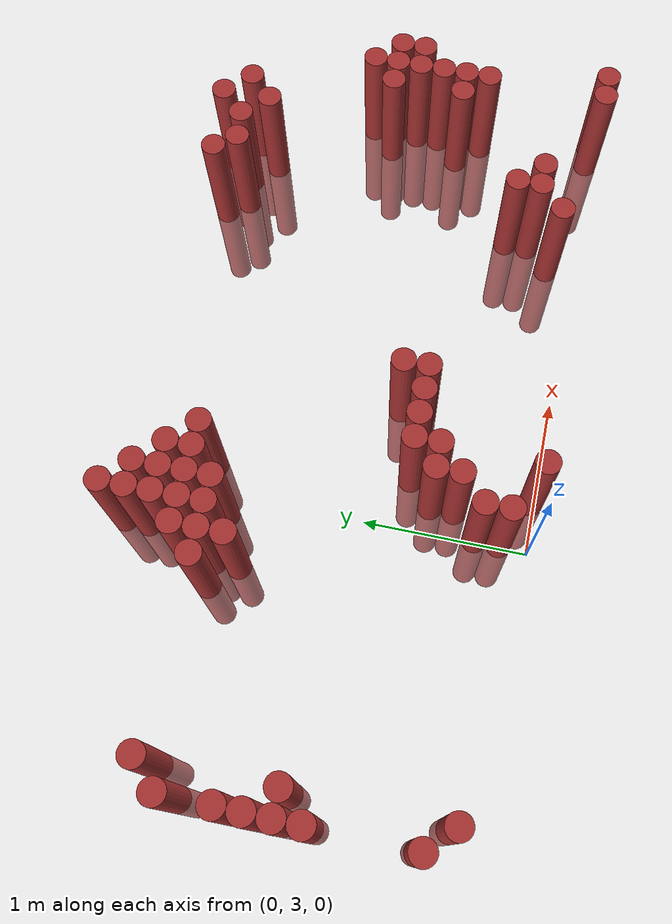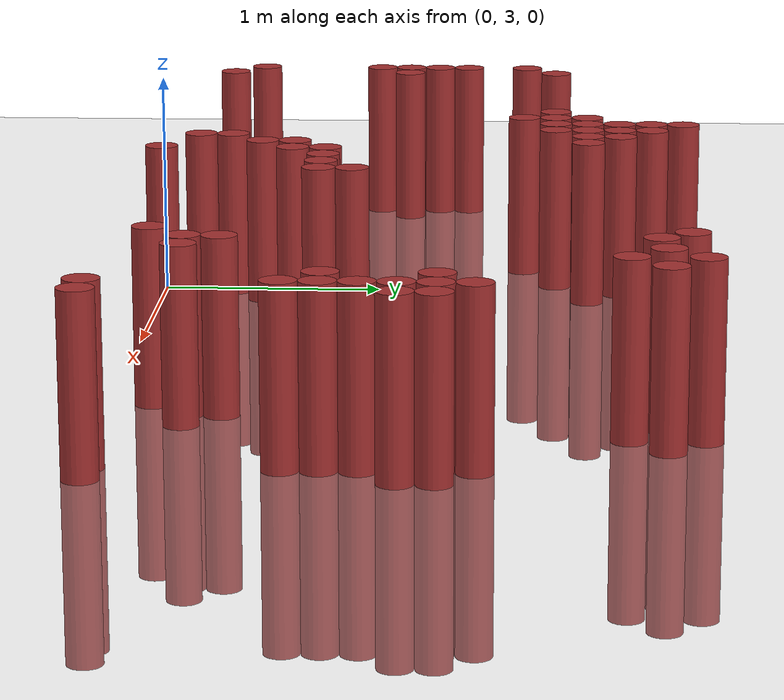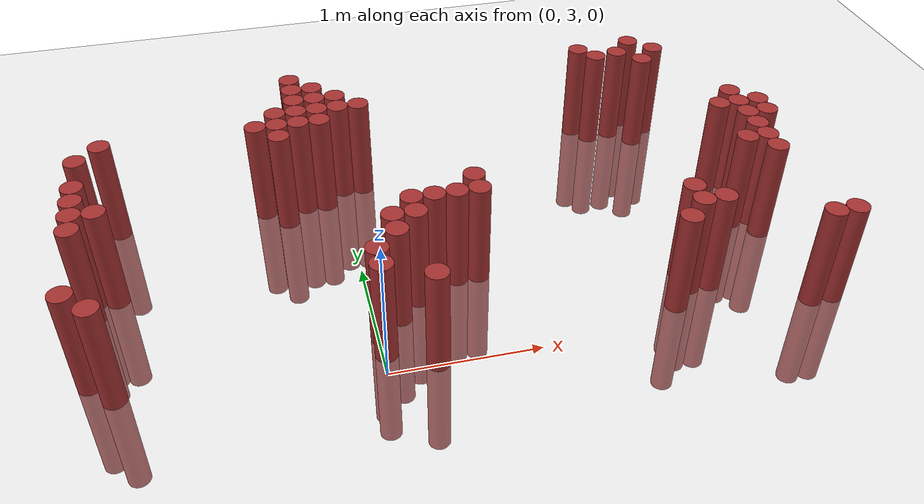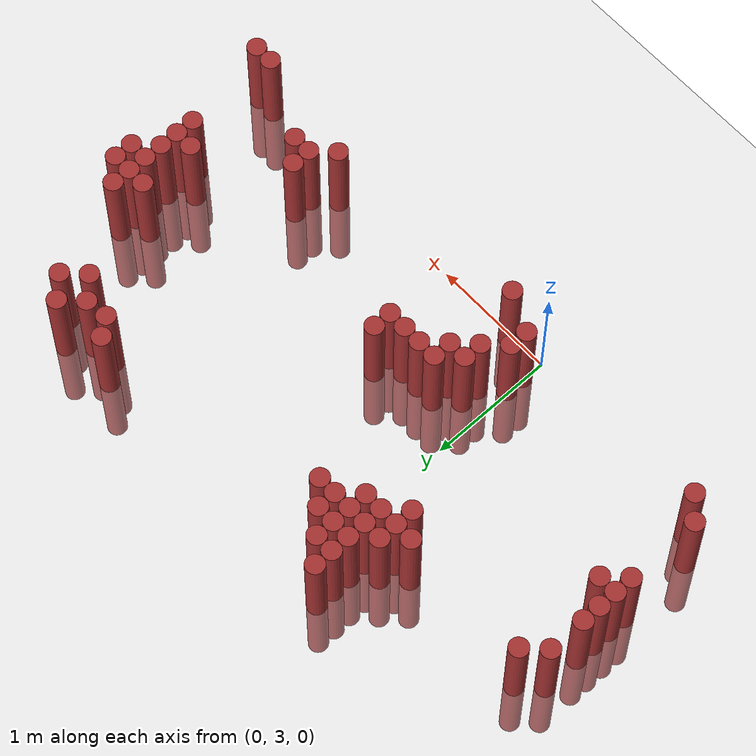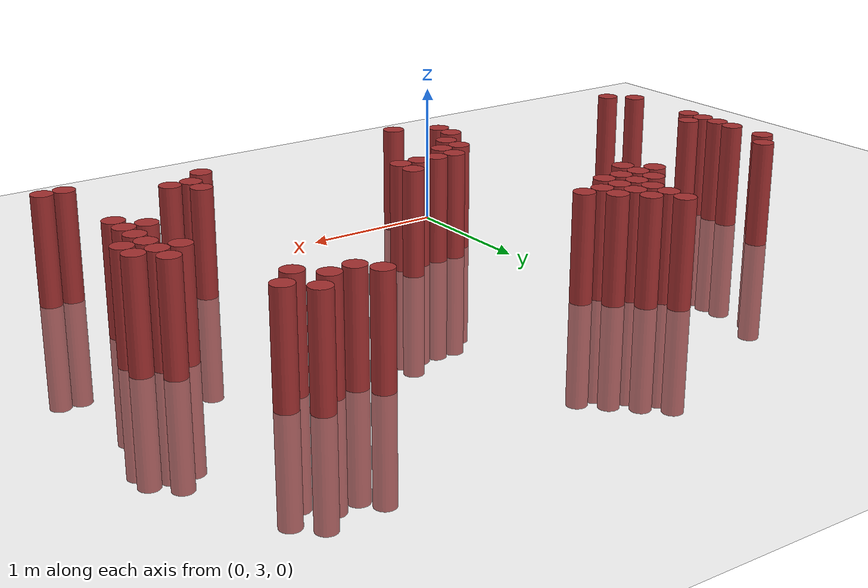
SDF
<sdf version="1.7">
 <world name="default">
  <model name="ground_plane">
   <static>1</static>
   <link name="link">
    <collision name="collision">
     <geometry><plane><normal>0 0 1</normal><size>100 100</size></plane></geometry>
     <surface><friction><ode><mu>100</mu><mu2>50</mu2></ode></friction></surface>
    </collision>
    <visual name="visual">
     <cast_shadows>0</cast_shadows>
     <geometry><plane><normal>0 0 1</normal><size>100 100</size></plane></geometry>
     <material>
      <script><uri>file://media/materials/scripts/gazebo.material</uri><name>Gazebo/Grey</name></script>
     </material>
    </visual>
   </link>
  </model>
  <model name="unit_cylinder_317">
   <static>1</static>
   <pose>-1.775 3.325 0 0 -0 0</pose>
   <link name="link">
    <inertial>
     <mass>1</mass>
     <inertia><ixx>0.145833</ixx><ixy>0</ixy><ixz>0</ixz><iyy>0.145833</iyy><iyz>0</iyz><izz>0.125</izz></inertia>
    </inertial>
    <collision name="collision">
     <geometry><cylinder><radius>0.075</radius><length>1.5</length></cylinder></geometry>
    </collision>
    <visual name="visual">
     <geometry><cylinder><radius>0.075</radius><length>1.5</length></cylinder></geometry>
     <material><ambient>0.648 0.192 0.192 1</ambient><diffuse>0.648 0.192 0.192 1</diffuse></material>
     <material>
      <script><name>Gazebo/Grey</name><uri>file://media/materials/scripts/gazebo.material</uri></script>
     </material>
    </visual>
   </link>
  </model>
  <model name="unit_cylinder_318">
   <static>1</static>
   <pose>-1.775 3.925 0 0 -0 0</pose>
   <link name="link">
    <inertial>
     <mass>1</mass>
     <inertia><ixx>0.145833</ixx><ixy>0</ixy><ixz>0</ixz><iyy>0.145833</iyy><iyz>0</iyz><izz>0.125</izz></inertia>
    </inertial>
    <collision name="collision">
     <geometry><cylinder><radius>0.075</radius><length>1.5</length></cylinder></geometry>
    </collision>
    <visual name="visual">
     <geometry><cylinder><radius>0.075</radius><length>1.5</length></cylinder></geometry>
     <material><ambient>0.648 0.192 0.192 1</ambient><diffuse>0.648 0.192 0.192 1</diffuse></material>
     <material>
      <script><name>Gazebo/Grey</name><uri>file://media/materials/scripts/gazebo.material</uri></script>
     </material>
    </visual>
   </link>
  </model>
  <model name="unit_cylinder_319">
   <static>1</static>
   <pose>-1.775 4.075 0 0 -0 0</pose>
   <link name="link">
    <inertial>
     <mass>1</mass>
     <inertia><ixx>0.145833</ixx><ixy>0</ixy><ixz>0</ixz><iyy>0.145833</iyy><iyz>0</iyz><izz>0.125</izz></inertia>
    </inertial>
    <collision name="collision">
     <geometry><cylinder><radius>0.075</radius><length>1.5</length></cylinder></geometry>
    </collision>
    <visual name="visual">
     <geometry><cylinder><radius>0.075</radius><length>1.5</length></cylinder></geometry>
     <material><ambient>0.648 0.192 0.192 1</ambient><diffuse>0.648 0.192 0.192 1</diffuse></material>
     <material>
      <script><name>Gazebo/Grey</name><uri>file://media/materials/scripts/gazebo.material</uri></script>
     </material>
    </visual>
   </link>
  </model>
  <model name="unit_cylinder_320">
   <static>1</static>
   <pose>-1.775 4.225 0 0 -0 0</pose>
   <link name="link">
    <inertial>
     <mass>1</mass>
     <inertia><ixx>0.145833</ixx><ixy>0</ixy><ixz>0</ixz><iyy>0.145833</iyy><iyz>0</iyz><izz>0.125</izz></inertia>
    </inertial>
    <collision name="collision">
     <geometry><cylinder><radius>0.075</radius><length>1.5</length></cylinder></geometry>
    </collision>
    <visual name="visual">
     <geometry><cylinder><radius>0.075</radius><length>1.5</length></cylinder></geometry>
     <material><ambient>0.648 0.192 0.192 1</ambient><diffuse>0.648 0.192 0.192 1</diffuse></material>
     <material>
      <script><name>Gazebo/Grey</name><uri>file://media/materials/scripts/gazebo.material</uri></script>
     </material>
    </visual>
   </link>
  </model>
  <model name="unit_cylinder_321">
   <static>1</static>
   <pose>-1.775 4.375 0 0 -0 0</pose>
   <link name="link">
    <inertial>
     <mass>1</mass>
     <inertia><ixx>0.145833</ixx><ixy>0</ixy><ixz>0</ixz><iyy>0.145833</iyy><iyz>0</iyz><izz>0.125</izz></inertia>
    </inertial>
    <collision name="collision">
     <geometry><cylinder><radius>0.075</radius><length>1.5</length></cylinder></geometry>
    </collision>
    <visual name="visual">
     <geometry><cylinder><radius>0.075</radius><length>1.5</length></cylinder></geometry>
     <material><ambient>0.648 0.192 0.192 1</ambient><diffuse>0.648 0.192 0.192 1</diffuse></material>
     <material>
      <script><name>Gazebo/Grey</name><uri>file://media/materials/scripts/gazebo.material</uri></script>
     </material>
    </visual>
   </link>
  </model>
  <model name="unit_cylinder_322">
   <static>1</static>
   <pose>-1.775 4.675 0 0 -0 0</pose>
   <link name="link">
    <inertial>
     <mass>1</mass>
     <inertia><ixx>0.145833</ixx><ixy>0</ixy><ixz>0</ixz><iyy>0.145833</iyy><iyz>0</iyz><izz>0.125</izz></inertia>
    </inertial>
    <collision name="collision">
     <geometry><cylinder><radius>0.075</radius><length>1.5</length></cylinder></geometry>
    </collision>
    <visual name="visual">
     <geometry><cylinder><radius>0.075</radius><length>1.5</length></cylinder></geometry>
     <material><ambient>0.648 0.192 0.192 1</ambient><diffuse>0.648 0.192 0.192 1</diffuse></material>
     <material>
      <script><name>Gazebo/Grey</name><uri>file://media/materials/scripts/gazebo.material</uri></script>
     </material>
    </visual>
   </link>
  </model>
  <model name="unit_cylinder_326">
   <static>1</static>
   <pose>-1.625 3.175 0 0 -0 0</pose>
   <link name="link">
    <inertial>
     <mass>1</mass>
     <inertia><ixx>0.145833</ixx><ixy>0</ixy><ixz>0</ixz><iyy>0.145833</iyy><iyz>0</iyz><izz>0.125</izz></inertia>
    </inertial>
    <collision name="collision">
     <geometry><cylinder><radius>0.075</radius><length>1.5</length></cylinder></geometry>
    </collision>
    <visual name="visual">
     <geometry><cylinder><radius>0.075</radius><length>1.5</length></cylinder></geometry>
     <material><ambient>0.648 0.192 0.192 1</ambient><diffuse>0.648 0.192 0.192 1</diffuse></material>
     <material>
      <script><name>Gazebo/Grey</name><uri>file://media/materials/scripts/gazebo.material</uri></script>
     </material>
    </visual>
   </link>
  </model>
  <model name="unit_cylinder_327">
   <static>1</static>
   <pose>-1.625 4.075 0 0 -0 0</pose>
   <link name="link">
    <inertial>
     <mass>1</mass>
     <inertia><ixx>0.145833</ixx><ixy>0</ixy><ixz>0</ixz><iyy>0.145833</iyy><iyz>0</iyz><izz>0.125</izz></inertia>
    </inertial>
    <collision name="collision">
     <geometry><cylinder><radius>0.075</radius><length>1.5</length></cylinder></geometry>
    </collision>
    <visual name="visual">
     <geometry><cylinder><radius>0.075</radius><length>1.5</length></cylinder></geometry>
     <material><ambient>0.648 0.192 0.192 1</ambient><diffuse>0.648 0.192 0.192 1</diffuse></material>
     <material>
      <script><name>Gazebo/Grey</name><uri>file://media/materials/scripts/gazebo.material</uri></script>
     </material>
    </visual>
   </link>
  </model>
  <model name="unit_cylinder_328">
   <static>1</static>
   <pose>-1.625 4.825 0 0 -0 0</pose>
   <link name="link">
    <inertial>
     <mass>1</mass>
     <inertia><ixx>0.145833</ixx><ixy>0</ixy><ixz>0</ixz><iyy>0.145833</iyy><iyz>0</iyz><izz>0.125</izz></inertia>
    </inertial>
    <collision name="collision">
     <geometry><cylinder><radius>0.075</radius><length>1.5</length></cylinder></geometry>
    </collision>
    <visual name="visual">
     <geometry><cylinder><radius>0.075</radius><length>1.5</length></cylinder></geometry>
     <material><ambient>0.648 0.192 0.192 1</ambient><diffuse>0.648 0.192 0.192 1</diffuse></material>
     <material>
      <script><name>Gazebo/Grey</name><uri>file://media/materials/scripts/gazebo.material</uri></script>
     </material>
    </visual>
   </link>
  </model>
  <model name="unit_cylinder_347">
   <static>1</static>
   <pose>-0.575 4.825 0 0 -0 0</pose>
   <link name="link">
    <inertial>
     <mass>1</mass>
     <inertia><ixx>0.145833</ixx><ixy>0</ixy><ixz>0</ixz><iyy>0.145833</iyy><iyz>0</iyz><izz>0.125</izz></inertia>
    </inertial>
    <collision name="collision">
     <geometry><cylinder><radius>0.075</radius><length>1.5</length></cylinder></geometry>
    </collision>
    <visual name="visual">
     <geometry><cylinder><radius>0.075</radius><length>1.5</length></cylinder></geometry>
     <material><ambient>0.648 0.192 0.192 1</ambient><diffuse>0.648 0.192 0.192 1</diffuse></material>
     <material>
      <script><name>Gazebo/Grey</name><uri>file://media/materials/scripts/gazebo.material</uri></script>
     </material>
    </visual>
   </link>
  </model>
  <model name="unit_cylinder_348">
   <static>1</static>
   <pose>-0.425 4.675 0 0 -0 0</pose>
   <link name="link">
    <inertial>
     <mass>1</mass>
     <inertia><ixx>0.145833</ixx><ixy>0</ixy><ixz>0</ixz><iyy>0.145833</iyy><iyz>0</iyz><izz>0.125</izz></inertia>
    </inertial>
    <collision name="collision">
     <geometry><cylinder><radius>0.075</radius><length>1.5</length></cylinder></geometry>
    </collision>
    <visual name="visual">
     <geometry><cylinder><radius>0.075</radius><length>1.5</length></cylinder></geometry>
     <material><ambient>0.648 0.192 0.192 1</ambient><diffuse>0.648 0.192 0.192 1</diffuse></material>
     <material>
      <script><name>Gazebo/Grey</name><uri>file://media/materials/scripts/gazebo.material</uri></script>
     </material>
    </visual>
   </link>
  </model>
  <model name="unit_cylinder_349">
   <static>1</static>
   <pose>-0.425 4.825 0 0 -0 0</pose>
   <link name="link">
    <inertial>
     <mass>1</mass>
     <inertia><ixx>0.145833</ixx><ixy>0</ixy><ixz>0</ixz><iyy>0.145833</iyy><iyz>0</iyz><izz>0.125</izz></inertia>
    </inertial>
    <collision name="collision">
     <geometry><cylinder><radius>0.075</radius><length>1.5</length></cylinder></geometry>
    </collision>
    <visual name="visual">
     <geometry><cylinder><radius>0.075</radius><length>1.5</length></cylinder></geometry>
     <material><ambient>0.648 0.192 0.192 1</ambient><diffuse>0.648 0.192 0.192 1</diffuse></material>
     <material>
      <script><name>Gazebo/Grey</name><uri>file://media/materials/scripts/gazebo.material</uri></script>
     </material>
    </visual>
   </link>
  </model>
  <model name="unit_cylinder_350">
   <static>1</static>
   <pose>-0.425 4.975 0 0 -0 0</pose>
   <link name="link">
    <inertial>
     <mass>1</mass>
     <inertia><ixx>0.145833</ixx><ixy>0</ixy><ixz>0</ixz><iyy>0.145833</iyy><iyz>0</iyz><izz>0.125</izz></inertia>
    </inertial>
    <collision name="collision">
     <geometry><cylinder><radius>0.075</radius><length>1.5</length></cylinder></geometry>
    </collision>
    <visual name="visual">
     <geometry><cylinder><radius>0.075</radius><length>1.5</length></cylinder></geometry>
     <material><ambient>0.648 0.192 0.192 1</ambient><diffuse>0.648 0.192 0.192 1</diffuse></material>
     <material>
      <script><name>Gazebo/Grey</name><uri>file://media/materials/scripts/gazebo.material</uri></script>
     </material>
    </visual>
   </link>
  </model>
  <model name="unit_cylinder_351">
   <static>1</static>
   <pose>-0.275 4.825 0 0 -0 0</pose>
   <link name="link">
    <inertial>
     <mass>1</mass>
     <inertia><ixx>0.145833</ixx><ixy>0</ixy><ixz>0</ixz><iyy>0.145833</iyy><iyz>0</iyz><izz>0.125</izz></inertia>
    </inertial>
    <collision name="collision">
     <geometry><cylinder><radius>0.075</radius><length>1.5</length></cylinder></geometry>
    </collision>
    <visual name="visual">
     <geometry><cylinder><radius>0.075</radius><length>1.5</length></cylinder></geometry>
     <material><ambient>0.648 0.192 0.192 1</ambient><diffuse>0.648 0.192 0.192 1</diffuse></material>
     <material>
      <script><name>Gazebo/Grey</name><uri>file://media/materials/scripts/gazebo.material</uri></script>
     </material>
    </visual>
   </link>
  </model>
  <model name="unit_cylinder_352">
   <static>1</static>
   <pose>-0.275 4.975 0 0 -0 0</pose>
   <link name="link">
    <inertial>
     <mass>1</mass>
     <inertia><ixx>0.145833</ixx><ixy>0</ixy><ixz>0</ixz><iyy>0.145833</iyy><iyz>0</iyz><izz>0.125</izz></inertia>
    </inertial>
    <collision name="collision">
     <geometry><cylinder><radius>0.075</radius><length>1.5</length></cylinder></geometry>
    </collision>
    <visual name="visual">
     <geometry><cylinder><radius>0.075</radius><length>1.5</length></cylinder></geometry>
     <material><ambient>0.648 0.192 0.192 1</ambient><diffuse>0.648 0.192 0.192 1</diffuse></material>
     <material>
      <script><name>Gazebo/Grey</name><uri>file://media/materials/scripts/gazebo.material</uri></script>
     </material>
    </visual>
   </link>
  </model>
  <model name="unit_cylinder_353">
   <static>1</static>
   <pose>-0.275 5.125 0 0 -0 0</pose>
   <link name="link">
    <inertial>
     <mass>1</mass>
     <inertia><ixx>0.145833</ixx><ixy>0</ixy><ixz>0</ixz><iyy>0.145833</iyy><iyz>0</iyz><izz>0.125</izz></inertia>
    </inertial>
    <collision name="collision">
     <geometry><cylinder><radius>0.075</radius><length>1.5</length></cylinder></geometry>
    </collision>
    <visual name="visual">
     <geometry><cylinder><radius>0.075</radius><length>1.5</length></cylinder></geometry>
     <material><ambient>0.648 0.192 0.192 1</ambient><diffuse>0.648 0.192 0.192 1</diffuse></material>
     <material>
      <script><name>Gazebo/Grey</name><uri>file://media/materials/scripts/gazebo.material</uri></script>
     </material>
    </visual>
   </link>
  </model>
  <model name="unit_cylinder_354">
   <static>1</static>
   <pose>-0.275 5.275 0 0 -0 0</pose>
   <link name="link">
    <inertial>
     <mass>1</mass>
     <inertia><ixx>0.145833</ixx><ixy>0</ixy><ixz>0</ixz><iyy>0.145833</iyy><iyz>0</iyz><izz>0.125</izz></inertia>
    </inertial>
    <collision name="collision">
     <geometry><cylinder><radius>0.075</radius><length>1.5</length></cylinder></geometry>
    </collision>
    <visual name="visual">
     <geometry><cylinder><radius>0.075</radius><length>1.5</length></cylinder></geometry>
     <material><ambient>0.648 0.192 0.192 1</ambient><diffuse>0.648 0.192 0.192 1</diffuse></material>
     <material>
      <script><name>Gazebo/Grey</name><uri>file://media/materials/scripts/gazebo.material</uri></script>
     </material>
    </visual>
   </link>
  </model>
  <model name="unit_cylinder_355">
   <static>1</static>
   <pose>-0.275 5.425 0 0 -0 0</pose>
   <link name="link">
    <inertial>
     <mass>1</mass>
     <inertia><ixx>0.145833</ixx><ixy>0</ixy><ixz>0</ixz><iyy>0.145833</iyy><iyz>0</iyz><izz>0.125</izz></inertia>
    </inertial>
    <collision name="collision">
     <geometry><cylinder><radius>0.075</radius><length>1.5</length></cylinder></geometry>
    </collision>
    <visual name="visual">
     <geometry><cylinder><radius>0.075</radius><length>1.5</length></cylinder></geometry>
     <material><ambient>0.648 0.192 0.192 1</ambient><diffuse>0.648 0.192 0.192 1</diffuse></material>
     <material>
      <script><name>Gazebo/Grey</name><uri>file://media/materials/scripts/gazebo.material</uri></script>
     </material>
    </visual>
   </link>
  </model>
  <model name="unit_cylinder_357">
   <static>1</static>
   <pose>-0.125 4.825 0 0 -0 0</pose>
   <link name="link">
    <inertial>
     <mass>1</mass>
     <inertia><ixx>0.145833</ixx><ixy>0</ixy><ixz>0</ixz><iyy>0.145833</iyy><iyz>0</iyz><izz>0.125</izz></inertia>
    </inertial>
    <collision name="collision">
     <geometry><cylinder><radius>0.075</radius><length>1.5</length></cylinder></geometry>
    </collision>
    <visual name="visual">
     <geometry><cylinder><radius>0.075</radius><length>1.5</length></cylinder></geometry>
     <material><ambient>0.648 0.192 0.192 1</ambient><diffuse>0.648 0.192 0.192 1</diffuse></material>
     <material>
      <script><name>Gazebo/Grey</name><uri>file://media/materials/scripts/gazebo.material</uri></script>
     </material>
    </visual>
   </link>
  </model>
  <model name="unit_cylinder_358">
   <static>1</static>
   <pose>-0.125 4.975 0 0 -0 0</pose>
   <link name="link">
    <inertial>
     <mass>1</mass>
     <inertia><ixx>0.145833</ixx><ixy>0</ixy><ixz>0</ixz><iyy>0.145833</iyy><iyz>0</iyz><izz>0.125</izz></inertia>
    </inertial>
    <collision name="collision">
     <geometry><cylinder><radius>0.075</radius><length>1.5</length></cylinder></geometry>
    </collision>
    <visual name="visual">
     <geometry><cylinder><radius>0.075</radius><length>1.5</length></cylinder></geometry>
     <material><ambient>0.648 0.192 0.192 1</ambient><diffuse>0.648 0.192 0.192 1</diffuse></material>
     <material>
      <script><name>Gazebo/Grey</name><uri>file://media/materials/scripts/gazebo.material</uri></script>
     </material>
    </visual>
   </link>
  </model>
  <model name="unit_cylinder_359">
   <static>1</static>
   <pose>-0.125 5.125 0 0 -0 0</pose>
   <link name="link">
    <inertial>
     <mass>1</mass>
     <inertia><ixx>0.145833</ixx><ixy>0</ixy><ixz>0</ixz><iyy>0.145833</iyy><iyz>0</iyz><izz>0.125</izz></inertia>
    </inertial>
    <collision name="collision">
     <geometry><cylinder><radius>0.075</radius><length>1.5</length></cylinder></geometry>
    </collision>
    <visual name="visual">
     <geometry><cylinder><radius>0.075</radius><length>1.5</length></cylinder></geometry>
     <material><ambient>0.648 0.192 0.192 1</ambient><diffuse>0.648 0.192 0.192 1</diffuse></material>
     <material>
      <script><name>Gazebo/Grey</name><uri>file://media/materials/scripts/gazebo.material</uri></script>
     </material>
    </visual>
   </link>
  </model>
  <model name="unit_cylinder_360">
   <static>1</static>
   <pose>-0.125 5.275 0 0 -0 0</pose>
   <link name="link">
    <inertial>
     <mass>1</mass>
     <inertia><ixx>0.145833</ixx><ixy>0</ixy><ixz>0</ixz><iyy>0.145833</iyy><iyz>0</iyz><izz>0.125</izz></inertia>
    </inertial>
    <collision name="collision">
     <geometry><cylinder><radius>0.075</radius><length>1.5</length></cylinder></geometry>
    </collision>
    <visual name="visual">
     <geometry><cylinder><radius>0.075</radius><length>1.5</length></cylinder></geometry>
     <material><ambient>0.648 0.192 0.192 1</ambient><diffuse>0.648 0.192 0.192 1</diffuse></material>
     <material>
      <script><name>Gazebo/Grey</name><uri>file://media/materials/scripts/gazebo.material</uri></script>
     </material>
    </visual>
   </link>
  </model>
  <model name="unit_cylinder_363">
   <static>1</static>
   <pose>0.025 3.175 0 0 -0 0</pose>
   <link name="link">
    <inertial>
     <mass>1</mass>
     <inertia><ixx>0.145833</ixx><ixy>0</ixy><ixz>0</ixz><iyy>0.145833</iyy><iyz>0</iyz><izz>0.125</izz></inertia>
    </inertial>
    <collision name="collision">
     <geometry><cylinder><radius>0.075</radius><length>1.5</length></cylinder></geometry>
    </collision>
    <visual name="visual">
     <geometry><cylinder><radius>0.075</radius><length>1.5</length></cylinder></geometry>
     <material><ambient>0.648 0.192 0.192 1</ambient><diffuse>0.648 0.192 0.192 1</diffuse></material>
     <material>
      <script><name>Gazebo/Grey</name><uri>file://media/materials/scripts/gazebo.material</uri></script>
     </material>
    </visual>
   </link>
  </model>
  <model name="unit_cylinder_364">
   <static>1</static>
   <pose>0.025 3.325 0 0 -0 0</pose>
   <link name="link">
    <inertial>
     <mass>1</mass>
     <inertia><ixx>0.145833</ixx><ixy>0</ixy><ixz>0</ixz><iyy>0.145833</iyy><iyz>0</iyz><izz>0.125</izz></inertia>
    </inertial>
    <collision name="collision">
     <geometry><cylinder><radius>0.075</radius><length>1.5</length></cylinder></geometry>
    </collision>
    <visual name="visual">
     <geometry><cylinder><radius>0.075</radius><length>1.5</length></cylinder></geometry>
     <material><ambient>0.648 0.192 0.192 1</ambient><diffuse>0.648 0.192 0.192 1</diffuse></material>
     <material>
      <script><name>Gazebo/Grey</name><uri>file://media/materials/scripts/gazebo.material</uri></script>
     </material>
    </visual>
   </link>
  </model>
  <model name="unit_cylinder_365">
   <static>1</static>
   <pose>0.025 4.975 0 0 -0 0</pose>
   <link name="link">
    <inertial>
     <mass>1</mass>
     <inertia><ixx>0.145833</ixx><ixy>0</ixy><ixz>0</ixz><iyy>0.145833</iyy><iyz>0</iyz><izz>0.125</izz></inertia>
    </inertial>
    <collision name="collision">
     <geometry><cylinder><radius>0.075</radius><length>1.5</length></cylinder></geometry>
    </collision>
    <visual name="visual">
     <geometry><cylinder><radius>0.075</radius><length>1.5</length></cylinder></geometry>
     <material><ambient>0.648 0.192 0.192 1</ambient><diffuse>0.648 0.192 0.192 1</diffuse></material>
     <material>
      <script><name>Gazebo/Grey</name><uri>file://media/materials/scripts/gazebo.material</uri></script>
     </material>
    </visual>
   </link>
  </model>
  <model name="unit_cylinder_366">
   <static>1</static>
   <pose>0.025 5.125 0 0 -0 0</pose>
   <link name="link">
    <inertial>
     <mass>1</mass>
     <inertia><ixx>0.145833</ixx><ixy>0</ixy><ixz>0</ixz><iyy>0.145833</iyy><iyz>0</iyz><izz>0.125</izz></inertia>
    </inertial>
    <collision name="collision">
     <geometry><cylinder><radius>0.075</radius><length>1.5</length></cylinder></geometry>
    </collision>
    <visual name="visual">
     <geometry><cylinder><radius>0.075</radius><length>1.5</length></cylinder></geometry>
     <material><ambient>0.648 0.192 0.192 1</ambient><diffuse>0.648 0.192 0.192 1</diffuse></material>
     <material>
      <script><name>Gazebo/Grey</name><uri>file://media/materials/scripts/gazebo.material</uri></script>
     </material>
    </visual>
   </link>
  </model>
  <model name="unit_cylinder_370">
   <static>1</static>
   <pose>0.175 3.475 0 0 -0 0</pose>
   <link name="link">
    <inertial>
     <mass>1</mass>
     <inertia><ixx>0.145833</ixx><ixy>0</ixy><ixz>0</ixz><iyy>0.145833</iyy><iyz>0</iyz><izz>0.125</izz></inertia>
    </inertial>
    <collision name="collision">
     <geometry><cylinder><radius>0.075</radius><length>1.5</length></cylinder></geometry>
    </collision>
    <visual name="visual">
     <geometry><cylinder><radius>0.075</radius><length>1.5</length></cylinder></geometry>
     <material><ambient>0.648 0.192 0.192 1</ambient><diffuse>0.648 0.192 0.192 1</diffuse></material>
     <material>
      <script><name>Gazebo/Grey</name><uri>file://media/materials/scripts/gazebo.material</uri></script>
     </material>
    </visual>
   </link>
  </model>
  <model name="unit_cylinder_371">
   <static>1</static>
   <pose>0.175 3.625 0 0 -0 0</pose>
   <link name="link">
    <inertial>
     <mass>1</mass>
     <inertia><ixx>0.145833</ixx><ixy>0</ixy><ixz>0</ixz><iyy>0.145833</iyy><iyz>0</iyz><izz>0.125</izz></inertia>
    </inertial>
    <collision name="collision">
     <geometry><cylinder><radius>0.075</radius><length>1.5</length></cylinder></geometry>
    </collision>
    <visual name="visual">
     <geometry><cylinder><radius>0.075</radius><length>1.5</length></cylinder></geometry>
     <material><ambient>0.648 0.192 0.192 1</ambient><diffuse>0.648 0.192 0.192 1</diffuse></material>
     <material>
      <script><name>Gazebo/Grey</name><uri>file://media/materials/scripts/gazebo.material</uri></script>
     </material>
    </visual>
   </link>
  </model>
  <model name="unit_cylinder_372">
   <static>1</static>
   <pose>0.175 4.975 0 0 -0 0</pose>
   <link name="link">
    <inertial>
     <mass>1</mass>
     <inertia><ixx>0.145833</ixx><ixy>0</ixy><ixz>0</ixz><iyy>0.145833</iyy><iyz>0</iyz><izz>0.125</izz></inertia>
    </inertial>
    <collision name="collision">
     <geometry><cylinder><radius>0.075</radius><length>1.5</length></cylinder></geometry>
    </collision>
    <visual name="visual">
     <geometry><cylinder><radius>0.075</radius><length>1.5</length></cylinder></geometry>
     <material><ambient>0.648 0.192 0.192 1</ambient><diffuse>0.648 0.192 0.192 1</diffuse></material>
     <material>
      <script><name>Gazebo/Grey</name><uri>file://media/materials/scripts/gazebo.material</uri></script>
     </material>
    </visual>
   </link>
  </model>
  <model name="unit_cylinder_375">
   <static>1</static>
   <pose>0.325 3.025 0 0 -0 0</pose>
   <link name="link">
    <inertial>
     <mass>1</mass>
     <inertia><ixx>0.145833</ixx><ixy>0</ixy><ixz>0</ixz><iyy>0.145833</iyy><iyz>0</iyz><izz>0.125</izz></inertia>
    </inertial>
    <collision name="collision">
     <geometry><cylinder><radius>0.075</radius><length>1.5</length></cylinder></geometry>
    </collision>
    <visual name="visual">
     <geometry><cylinder><radius>0.075</radius><length>1.5</length></cylinder></geometry>
     <material><ambient>0.648 0.192 0.192 1</ambient><diffuse>0.648 0.192 0.192 1</diffuse></material>
     <material>
      <script><name>Gazebo/Grey</name><uri>file://media/materials/scripts/gazebo.material</uri></script>
     </material>
    </visual>
   </link>
  </model>
  <model name="unit_cylinder_376">
   <static>1</static>
   <pose>0.325 3.625 0 0 -0 0</pose>
   <link name="link">
    <inertial>
     <mass>1</mass>
     <inertia><ixx>0.145833</ixx><ixy>0</ixy><ixz>0</ixz><iyy>0.145833</iyy><iyz>0</iyz><izz>0.125</izz></inertia>
    </inertial>
    <collision name="collision">
     <geometry><cylinder><radius>0.075</radius><length>1.5</length></cylinder></geometry>
    </collision>
    <visual name="visual">
     <geometry><cylinder><radius>0.075</radius><length>1.5</length></cylinder></geometry>
     <material><ambient>0.648 0.192 0.192 1</ambient><diffuse>0.648 0.192 0.192 1</diffuse></material>
     <material>
      <script><name>Gazebo/Grey</name><uri>file://media/materials/scripts/gazebo.material</uri></script>
     </material>
    </visual>
   </link>
  </model>
  <model name="unit_cylinder_377">
   <static>1</static>
   <pose>0.325 3.775 0 0 -0 0</pose>
   <link name="link">
    <inertial>
     <mass>1</mass>
     <inertia><ixx>0.145833</ixx><ixy>0</ixy><ixz>0</ixz><iyy>0.145833</iyy><iyz>0</iyz><izz>0.125</izz></inertia>
    </inertial>
    <collision name="collision">
     <geometry><cylinder><radius>0.075</radius><length>1.5</length></cylinder></geometry>
    </collision>
    <visual name="visual">
     <geometry><cylinder><radius>0.075</radius><length>1.5</length></cylinder></geometry>
     <material><ambient>0.648 0.192 0.192 1</ambient><diffuse>0.648 0.192 0.192 1</diffuse></material>
     <material>
      <script><name>Gazebo/Grey</name><uri>file://media/materials/scripts/gazebo.material</uri></script>
     </material>
    </visual>
   </link>
  </model>
  <model name="unit_cylinder_378">
   <static>1</static>
   <pose>0.475 3.775 0 0 -0 0</pose>
   <link name="link">
    <inertial>
     <mass>1</mass>
     <inertia><ixx>0.145833</ixx><ixy>0</ixy><ixz>0</ixz><iyy>0.145833</iyy><iyz>0</iyz><izz>0.125</izz></inertia>
    </inertial>
    <collision name="collision">
     <geometry><cylinder><radius>0.075</radius><length>1.5</length></cylinder></geometry>
    </collision>
    <visual name="visual">
     <geometry><cylinder><radius>0.075</radius><length>1.5</length></cylinder></geometry>
     <material><ambient>0.648 0.192 0.192 1</ambient><diffuse>0.648 0.192 0.192 1</diffuse></material>
     <material>
      <script><name>Gazebo/Grey</name><uri>file://media/materials/scripts/gazebo.material</uri></script>
     </material>
    </visual>
   </link>
  </model>
  <model name="unit_cylinder_383">
   <static>1</static>
   <pose>0.625 3.775 0 0 -0 0</pose>
   <link name="link">
    <inertial>
     <mass>1</mass>
     <inertia><ixx>0.145833</ixx><ixy>0</ixy><ixz>0</ixz><iyy>0.145833</iyy><iyz>0</iyz><izz>0.125</izz></inertia>
    </inertial>
    <collision name="collision">
     <geometry><cylinder><radius>0.075</radius><length>1.5</length></cylinder></geometry>
    </collision>
    <visual name="visual">
     <geometry><cylinder><radius>0.075</radius><length>1.5</length></cylinder></geometry>
     <material><ambient>0.648 0.192 0.192 1</ambient><diffuse>0.648 0.192 0.192 1</diffuse></material>
     <material>
      <script><name>Gazebo/Grey</name><uri>file://media/materials/scripts/gazebo.material</uri></script>
     </material>
    </visual>
   </link>
  </model>
  <model name="unit_cylinder_387">
   <static>1</static>
   <pose>0.775 3.775 0 0 -0 0</pose>
   <link name="link">
    <inertial>
     <mass>1</mass>
     <inertia><ixx>0.145833</ixx><ixy>0</ixy><ixz>0</ixz><iyy>0.145833</iyy><iyz>0</iyz><izz>0.125</izz></inertia>
    </inertial>
    <collision name="collision">
     <geometry><cylinder><radius>0.075</radius><length>1.5</length></cylinder></geometry>
    </collision>
    <visual name="visual">
     <geometry><cylinder><radius>0.075</radius><length>1.5</length></cylinder></geometry>
     <material><ambient>0.648 0.192 0.192 1</ambient><diffuse>0.648 0.192 0.192 1</diffuse></material>
     <material>
      <script><name>Gazebo/Grey</name><uri>file://media/materials/scripts/gazebo.material</uri></script>
     </material>
    </visual>
   </link>
  </model>
  <model name="unit_cylinder_388">
   <static>1</static>
   <pose>0.775 3.925 0 0 -0 0</pose>
   <link name="link">
    <inertial>
     <mass>1</mass>
     <inertia><ixx>0.145833</ixx><ixy>0</ixy><ixz>0</ixz><iyy>0.145833</iyy><iyz>0</iyz><izz>0.125</izz></inertia>
    </inertial>
    <collision name="collision">
     <geometry><cylinder><radius>0.075</radius><length>1.5</length></cylinder></geometry>
    </collision>
    <visual name="visual">
     <geometry><cylinder><radius>0.075</radius><length>1.5</length></cylinder></geometry>
     <material><ambient>0.648 0.192 0.192 1</ambient><diffuse>0.648 0.192 0.192 1</diffuse></material>
     <material>
      <script><name>Gazebo/Grey</name><uri>file://media/materials/scripts/gazebo.material</uri></script>
     </material>
    </visual>
   </link>
  </model>
  <model name="unit_cylinder_403">
   <static>1</static>
   <pose>1.975 3.175 0 0 -0 0</pose>
   <link name="link">
    <inertial>
     <mass>1</mass>
     <inertia><ixx>0.145833</ixx><ixy>0</ixy><ixz>0</ixz><iyy>0.145833</iyy><iyz>0</iyz><izz>0.125</izz></inertia>
    </inertial>
    <collision name="collision">
     <geometry><cylinder><radius>0.075</radius><length>1.5</length></cylinder></geometry>
    </collision>
    <visual name="visual">
     <geometry><cylinder><radius>0.075</radius><length>1.5</length></cylinder></geometry>
     <material><ambient>0.648 0.192 0.192 1</ambient><diffuse>0.648 0.192 0.192 1</diffuse></material>
     <material>
      <script><name>Gazebo/Grey</name><uri>file://media/materials/scripts/gazebo.material</uri></script>
     </material>
    </visual>
   </link>
  </model>
  <model name="unit_cylinder_405">
   <static>1</static>
   <pose>2.125 3.325 0 0 -0 0</pose>
   <link name="link">
    <inertial>
     <mass>1</mass>
     <inertia><ixx>0.145833</ixx><ixy>0</ixy><ixz>0</ixz><iyy>0.145833</iyy><iyz>0</iyz><izz>0.125</izz></inertia>
    </inertial>
    <collision name="collision">
     <geometry><cylinder><radius>0.075</radius><length>1.5</length></cylinder></geometry>
    </collision>
    <visual name="visual">
     <geometry><cylinder><radius>0.075</radius><length>1.5</length></cylinder></geometry>
     <material><ambient>0.648 0.192 0.192 1</ambient><diffuse>0.648 0.192 0.192 1</diffuse></material>
     <material>
      <script><name>Gazebo/Grey</name><uri>file://media/materials/scripts/gazebo.material</uri></script>
     </material>
    </visual>
   </link>
  </model>
  <model name="unit_cylinder_406">
   <static>1</static>
   <pose>2.125 3.475 0 0 -0 0</pose>
   <link name="link">
    <inertial>
     <mass>1</mass>
     <inertia><ixx>0.145833</ixx><ixy>0</ixy><ixz>0</ixz><iyy>0.145833</iyy><iyz>0</iyz><izz>0.125</izz></inertia>
    </inertial>
    <collision name="collision">
     <geometry><cylinder><radius>0.075</radius><length>1.5</length></cylinder></geometry>
    </collision>
    <visual name="visual">
     <geometry><cylinder><radius>0.075</radius><length>1.5</length></cylinder></geometry>
     <material><ambient>0.648 0.192 0.192 1</ambient><diffuse>0.648 0.192 0.192 1</diffuse></material>
     <material>
      <script><name>Gazebo/Grey</name><uri>file://media/materials/scripts/gazebo.material</uri></script>
     </material>
    </visual>
   </link>
  </model>
  <model name="unit_cylinder_407">
   <static>1</static>
   <pose>2.275 3.325 0 0 -0 0</pose>
   <link name="link">
    <inertial>
     <mass>1</mass>
     <inertia><ixx>0.145833</ixx><ixy>0</ixy><ixz>0</ixz><iyy>0.145833</iyy><iyz>0</iyz><izz>0.125</izz></inertia>
    </inertial>
    <collision name="collision">
     <geometry><cylinder><radius>0.075</radius><length>1.5</length></cylinder></geometry>
    </collision>
    <visual name="visual">
     <geometry><cylinder><radius>0.075</radius><length>1.5</length></cylinder></geometry>
     <material><ambient>0.648 0.192 0.192 1</ambient><diffuse>0.648 0.192 0.192 1</diffuse></material>
     <material>
      <script><name>Gazebo/Grey</name><uri>file://media/materials/scripts/gazebo.material</uri></script>
     </material>
    </visual>
   </link>
  </model>
  <model name="unit_cylinder_408">
   <static>1</static>
   <pose>2.275 5.275 0 0 -0 0</pose>
   <link name="link">
    <inertial>
     <mass>1</mass>
     <inertia><ixx>0.145833</ixx><ixy>0</ixy><ixz>0</ixz><iyy>0.145833</iyy><iyz>0</iyz><izz>0.125</izz></inertia>
    </inertial>
    <collision name="collision">
     <geometry><cylinder><radius>0.075</radius><length>1.5</length></cylinder></geometry>
    </collision>
    <visual name="visual">
     <geometry><cylinder><radius>0.075</radius><length>1.5</length></cylinder></geometry>
     <material><ambient>0.648 0.192 0.192 1</ambient><diffuse>0.648 0.192 0.192 1</diffuse></material>
     <material>
      <script><name>Gazebo/Grey</name><uri>file://media/materials/scripts/gazebo.material</uri></script>
     </material>
    </visual>
   </link>
  </model>
  <model name="unit_cylinder_409">
   <static>1</static>
   <pose>2.425 5.125 0 0 -0 0</pose>
   <link name="link">
    <inertial>
     <mass>1</mass>
     <inertia><ixx>0.145833</ixx><ixy>0</ixy><ixz>0</ixz><iyy>0.145833</iyy><iyz>0</iyz><izz>0.125</izz></inertia>
    </inertial>
    <collision name="collision">
     <geometry><cylinder><radius>0.075</radius><length>1.5</length></cylinder></geometry>
    </collision>
    <visual name="visual">
     <geometry><cylinder><radius>0.075</radius><length>1.5</length></cylinder></geometry>
     <material><ambient>0.648 0.192 0.192 1</ambient><diffuse>0.648 0.192 0.192 1</diffuse></material>
     <material>
      <script><name>Gazebo/Grey</name><uri>file://media/materials/scripts/gazebo.material</uri></script>
     </material>
    </visual>
   </link>
  </model>
  <model name="unit_cylinder_410">
   <static>1</static>
   <pose>2.425 5.425 0 0 -0 0</pose>
   <link name="link">
    <inertial>
     <mass>1</mass>
     <inertia><ixx>0.145833</ixx><ixy>0</ixy><ixz>0</ixz><iyy>0.145833</iyy><iyz>0</iyz><izz>0.125</izz></inertia>
    </inertial>
    <collision name="collision">
     <geometry><cylinder><radius>0.075</radius><length>1.5</length></cylinder></geometry>
    </collision>
    <visual name="visual">
     <geometry><cylinder><radius>0.075</radius><length>1.5</length></cylinder></geometry>
     <material><ambient>0.648 0.192 0.192 1</ambient><diffuse>0.648 0.192 0.192 1</diffuse></material>
     <material>
      <script><name>Gazebo/Grey</name><uri>file://media/materials/scripts/gazebo.material</uri></script>
     </material>
    </visual>
   </link>
  </model>
  <model name="unit_cylinder_411">
   <static>1</static>
   <pose>2.575 5.275 0 0 -0 0</pose>
   <link name="link">
    <inertial>
     <mass>1</mass>
     <inertia><ixx>0.145833</ixx><ixy>0</ixy><ixz>0</ixz><iyy>0.145833</iyy><iyz>0</iyz><izz>0.125</izz></inertia>
    </inertial>
    <collision name="collision">
     <geometry><cylinder><radius>0.075</radius><length>1.5</length></cylinder></geometry>
    </collision>
    <visual name="visual">
     <geometry><cylinder><radius>0.075</radius><length>1.5</length></cylinder></geometry>
     <material><ambient>0.648 0.192 0.192 1</ambient><diffuse>0.648 0.192 0.192 1</diffuse></material>
     <material>
      <script><name>Gazebo/Grey</name><uri>file://media/materials/scripts/gazebo.material</uri></script>
     </material>
    </visual>
   </link>
  </model>
  <model name="unit_cylinder_413">
   <static>1</static>
   <pose>2.725 3.925 0 0 -0 0</pose>
   <link name="link">
    <inertial>
     <mass>1</mass>
     <inertia><ixx>0.145833</ixx><ixy>0</ixy><ixz>0</ixz><iyy>0.145833</iyy><iyz>0</iyz><izz>0.125</izz></inertia>
    </inertial>
    <collision name="collision">
     <geometry><cylinder><radius>0.075</radius><length>1.5</length></cylinder></geometry>
    </collision>
    <visual name="visual">
     <geometry><cylinder><radius>0.075</radius><length>1.5</length></cylinder></geometry>
     <material><ambient>0.648 0.192 0.192 1</ambient><diffuse>0.648 0.192 0.192 1</diffuse></material>
     <material>
      <script><name>Gazebo/Grey</name><uri>file://media/materials/scripts/gazebo.material</uri></script>
     </material>
    </visual>
   </link>
  </model>
  <model name="unit_cylinder_414">
   <static>1</static>
   <pose>2.725 4.375 0 0 -0 0</pose>
   <link name="link">
    <inertial>
     <mass>1</mass>
     <inertia><ixx>0.145833</ixx><ixy>0</ixy><ixz>0</ixz><iyy>0.145833</iyy><iyz>0</iyz><izz>0.125</izz></inertia>
    </inertial>
    <collision name="collision">
     <geometry><cylinder><radius>0.075</radius><length>1.5</length></cylinder></geometry>
    </collision>
    <visual name="visual">
     <geometry><cylinder><radius>0.075</radius><length>1.5</length></cylinder></geometry>
     <material><ambient>0.648 0.192 0.192 1</ambient><diffuse>0.648 0.192 0.192 1</diffuse></material>
     <material>
      <script><name>Gazebo/Grey</name><uri>file://media/materials/scripts/gazebo.material</uri></script>
     </material>
    </visual>
   </link>
  </model>
  <model name="unit_cylinder_416">
   <static>1</static>
   <pose>2.875 3.025 0 0 -0 0</pose>
   <link name="link">
    <inertial>
     <mass>1</mass>
     <inertia><ixx>0.145833</ixx><ixy>0</ixy><ixz>0</ixz><iyy>0.145833</iyy><iyz>0</iyz><izz>0.125</izz></inertia>
    </inertial>
    <collision name="collision">
     <geometry><cylinder><radius>0.075</radius><length>1.5</length></cylinder></geometry>
    </collision>
    <visual name="visual">
     <geometry><cylinder><radius>0.075</radius><length>1.5</length></cylinder></geometry>
     <material><ambient>0.648 0.192 0.192 1</ambient><diffuse>0.648 0.192 0.192 1</diffuse></material>
     <material>
      <script><name>Gazebo/Grey</name><uri>file://media/materials/scripts/gazebo.material</uri></script>
     </material>
    </visual>
   </link>
  </model>
  <model name="unit_cylinder_417">
   <static>1</static>
   <pose>2.875 3.775 0 0 -0 0</pose>
   <link name="link">
    <inertial>
     <mass>1</mass>
     <inertia><ixx>0.145833</ixx><ixy>0</ixy><ixz>0</ixz><iyy>0.145833</iyy><iyz>0</iyz><izz>0.125</izz></inertia>
    </inertial>
    <collision name="collision">
     <geometry><cylinder><radius>0.075</radius><length>1.5</length></cylinder></geometry>
    </collision>
    <visual name="visual">
     <geometry><cylinder><radius>0.075</radius><length>1.5</length></cylinder></geometry>
     <material><ambient>0.648 0.192 0.192 1</ambient><diffuse>0.648 0.192 0.192 1</diffuse></material>
     <material>
      <script><name>Gazebo/Grey</name><uri>file://media/materials/scripts/gazebo.material</uri></script>
     </material>
    </visual>
   </link>
  </model>
  <model name="unit_cylinder_418">
   <static>1</static>
   <pose>2.875 3.925 0 0 -0 0</pose>
   <link name="link">
    <inertial>
     <mass>1</mass>
     <inertia><ixx>0.145833</ixx><ixy>0</ixy><ixz>0</ixz><iyy>0.145833</iyy><iyz>0</iyz><izz>0.125</izz></inertia>
    </inertial>
    <collision name="collision">
     <geometry><cylinder><radius>0.075</radius><length>1.5</length></cylinder></geometry>
    </collision>
    <visual name="visual">
     <geometry><cylinder><radius>0.075</radius><length>1.5</length></cylinder></geometry>
     <material><ambient>0.648 0.192 0.192 1</ambient><diffuse>0.648 0.192 0.192 1</diffuse></material>
     <material>
      <script><name>Gazebo/Grey</name><uri>file://media/materials/scripts/gazebo.material</uri></script>
     </material>
    </visual>
   </link>
  </model>
  <model name="unit_cylinder_419">
   <static>1</static>
   <pose>2.875 4.075 0 0 -0 0</pose>
   <link name="link">
    <inertial>
     <mass>1</mass>
     <inertia><ixx>0.145833</ixx><ixy>0</ixy><ixz>0</ixz><iyy>0.145833</iyy><iyz>0</iyz><izz>0.125</izz></inertia>
    </inertial>
    <collision name="collision">
     <geometry><cylinder><radius>0.075</radius><length>1.5</length></cylinder></geometry>
    </collision>
    <visual name="visual">
     <geometry><cylinder><radius>0.075</radius><length>1.5</length></cylinder></geometry>
     <material><ambient>0.648 0.192 0.192 1</ambient><diffuse>0.648 0.192 0.192 1</diffuse></material>
     <material>
      <script><name>Gazebo/Grey</name><uri>file://media/materials/scripts/gazebo.material</uri></script>
     </material>
    </visual>
   </link>
  </model>
  <model name="unit_cylinder_420">
   <static>1</static>
   <pose>2.875 4.225 0 0 -0 0</pose>
   <link name="link">
    <inertial>
     <mass>1</mass>
     <inertia><ixx>0.145833</ixx><ixy>0</ixy><ixz>0</ixz><iyy>0.145833</iyy><iyz>0</iyz><izz>0.125</izz></inertia>
    </inertial>
    <collision name="collision">
     <geometry><cylinder><radius>0.075</radius><length>1.5</length></cylinder></geometry>
    </collision>
    <visual name="visual">
     <geometry><cylinder><radius>0.075</radius><length>1.5</length></cylinder></geometry>
     <material><ambient>0.648 0.192 0.192 1</ambient><diffuse>0.648 0.192 0.192 1</diffuse></material>
     <material>
      <script><name>Gazebo/Grey</name><uri>file://media/materials/scripts/gazebo.material</uri></script>
     </material>
    </visual>
   </link>
  </model>
  <model name="unit_cylinder_421">
   <static>1</static>
   <pose>2.875 4.375 0 0 -0 0</pose>
   <link name="link">
    <inertial>
     <mass>1</mass>
     <inertia><ixx>0.145833</ixx><ixy>0</ixy><ixz>0</ixz><iyy>0.145833</iyy><iyz>0</iyz><izz>0.125</izz></inertia>
    </inertial>
    <collision name="collision">
     <geometry><cylinder><radius>0.075</radius><length>1.5</length></cylinder></geometry>
    </collision>
    <visual name="visual">
     <geometry><cylinder><radius>0.075</radius><length>1.5</length></cylinder></geometry>
     <material><ambient>0.648 0.192 0.192 1</ambient><diffuse>0.648 0.192 0.192 1</diffuse></material>
     <material>
      <script><name>Gazebo/Grey</name><uri>file://media/materials/scripts/gazebo.material</uri></script>
     </material>
    </visual>
   </link>
  </model>
  <model name="unit_cylinder_422">
   <static>1</static>
   <pose>2.875 4.525 0 0 -0 0</pose>
   <link name="link">
    <inertial>
     <mass>1</mass>
     <inertia><ixx>0.145833</ixx><ixy>0</ixy><ixz>0</ixz><iyy>0.145833</iyy><iyz>0</iyz><izz>0.125</izz></inertia>
    </inertial>
    <collision name="collision">
     <geometry><cylinder><radius>0.075</radius><length>1.5</length></cylinder></geometry>
    </collision>
    <visual name="visual">
     <geometry><cylinder><radius>0.075</radius><length>1.5</length></cylinder></geometry>
     <material><ambient>0.648 0.192 0.192 1</ambient><diffuse>0.648 0.192 0.192 1</diffuse></material>
     <material>
      <script><name>Gazebo/Grey</name><uri>file://media/materials/scripts/gazebo.material</uri></script>
     </material>
    </visual>
   </link>
  </model>
  <model name="unit_cylinder_424">
   <static>1</static>
   <pose>3.025 3.025 0 0 -0 0</pose>
   <link name="link">
    <inertial>
     <mass>1</mass>
     <inertia><ixx>0.145833</ixx><ixy>0</ixy><ixz>0</ixz><iyy>0.145833</iyy><iyz>0</iyz><izz>0.125</izz></inertia>
    </inertial>
    <collision name="collision">
     <geometry><cylinder><radius>0.075</radius><length>1.5</length></cylinder></geometry>
    </collision>
    <visual name="visual">
     <geometry><cylinder><radius>0.075</radius><length>1.5</length></cylinder></geometry>
     <material><ambient>0.648 0.192 0.192 1</ambient><diffuse>0.648 0.192 0.192 1</diffuse></material>
     <material>
      <script><name>Gazebo/Grey</name><uri>file://media/materials/scripts/gazebo.material</uri></script>
     </material>
    </visual>
   </link>
  </model>
  <model name="unit_cylinder_425">
   <static>1</static>
   <pose>3.025 4.225 0 0 -0 0</pose>
   <link name="link">
    <inertial>
     <mass>1</mass>
     <inertia><ixx>0.145833</ixx><ixy>0</ixy><ixz>0</ixz><iyy>0.145833</iyy><iyz>0</iyz><izz>0.125</izz></inertia>
    </inertial>
    <collision name="collision">
     <geometry><cylinder><radius>0.075</radius><length>1.5</length></cylinder></geometry>
    </collision>
    <visual name="visual">
     <geometry><cylinder><radius>0.075</radius><length>1.5</length></cylinder></geometry>
     <material><ambient>0.648 0.192 0.192 1</ambient><diffuse>0.648 0.192 0.192 1</diffuse></material>
     <material>
      <script><name>Gazebo/Grey</name><uri>file://media/materials/scripts/gazebo.material</uri></script>
     </material>
    </visual>
   </link>
  </model>
  <model name="unit_cylinder_426">
   <static>1</static>
   <pose>3.025 4.375 0 0 -0 0</pose>
   <link name="link">
    <inertial>
     <mass>1</mass>
     <inertia><ixx>0.145833</ixx><ixy>0</ixy><ixz>0</ixz><iyy>0.145833</iyy><iyz>0</iyz><izz>0.125</izz></inertia>
    </inertial>
    <collision name="collision">
     <geometry><cylinder><radius>0.075</radius><length>1.5</length></cylinder></geometry>
    </collision>
    <visual name="visual">
     <geometry><cylinder><radius>0.075</radius><length>1.5</length></cylinder></geometry>
     <material><ambient>0.648 0.192 0.192 1</ambient><diffuse>0.648 0.192 0.192 1</diffuse></material>
     <material>
      <script><name>Gazebo/Grey</name><uri>file://media/materials/scripts/gazebo.material</uri></script>
     </material>
    </visual>
   </link>
  </model>
  <model name="unit_cylinder_408_clone">
   <static>1</static>
   <pose>1.9931 5.38063 0 0 -0 0</pose>
   <link name="link">
    <inertial>
     <mass>1</mass>
     <inertia><ixx>0.145833</ixx><ixy>0</ixy><ixz>0</ixz><iyy>0.145833</iyy><iyz>0</iyz><izz>0.125</izz></inertia>
    </inertial>
    <collision name="collision">
     <geometry><cylinder><radius>0.075</radius><length>1.5</length></cylinder></geometry>
    </collision>
    <visual name="visual">
     <geometry><cylinder><radius>0.075</radius><length>1.5</length></cylinder></geometry>
     <material><ambient>0.648 0.192 0.192 1</ambient><diffuse>0.648 0.192 0.192 1</diffuse></material>
     <material>
      <script><name>Gazebo/Grey</name><uri>file://media/materials/scripts/gazebo.material</uri></script>
     </material>
    </visual>
   </link>
  </model>
  <model name="unit_cylinder_408_clone_0">
   <static>1</static>
   <pose>2.09416 5.252 0 0 -0 0</pose>
   <link name="link">
    <inertial>
     <mass>1</mass>
     <inertia><ixx>0.145833</ixx><ixy>0</ixy><ixz>0</ixz><iyy>0.145833</iyy><iyz>0</iyz><izz>0.125</izz></inertia>
    </inertial>
    <collision name="collision">
     <geometry><cylinder><radius>0.075</radius><length>1.5</length></cylinder></geometry>
    </collision>
    <visual name="visual">
     <geometry><cylinder><radius>0.075</radius><length>1.5</length></cylinder></geometry>
     <material><ambient>0.648 0.192 0.192 1</ambient><diffuse>0.648 0.192 0.192 1</diffuse></material>
     <material>
      <script><name>Gazebo/Grey</name><uri>file://media/materials/scripts/gazebo.material</uri></script>
     </material>
    </visual>
   </link>
  </model>
 </world>
</sdf>
